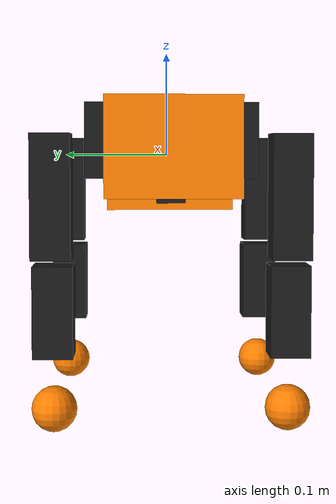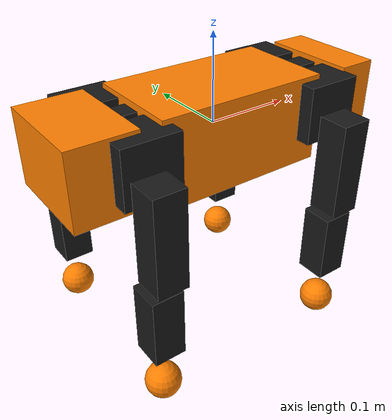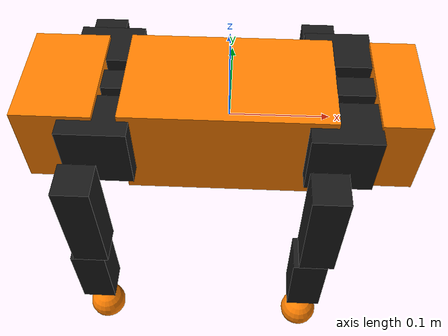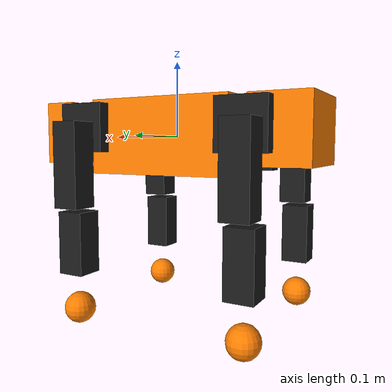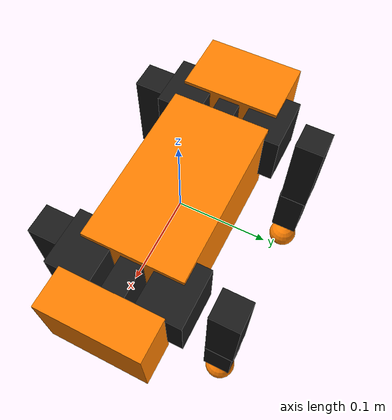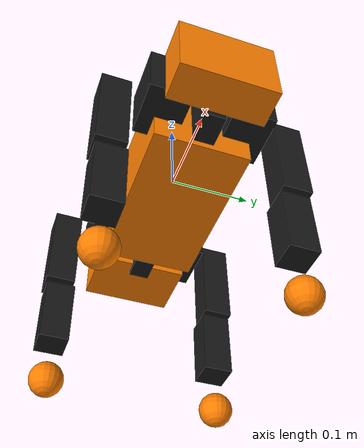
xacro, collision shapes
<?xml version="1.0"?>
<robot name="spot" xmlns:xacro="http://www.ros.org/wiki/xacro">

  <!-- Include Macros -->
  <xacro:include filename="$(find spot_mini_mini_description)/urdf/spot_macro.xacro" />

  <!-- ROS2 control - replaces transmissions -->
  <xacro:include filename="$(find spot_mini_mini_description)/urdf/ros2_control.xacro" />
  <!-- Robot description -->
  <!-- STATIC Links -->
  <link name="base_link"/>

  <!-- MAIN BODY -->
  <xacro:mesh_link name="base_inertia"
              origin_rpy="0 0 ${pi/2}" origin_xyz="-0.16 0.035 -0.045"
              i_rpy="0 0 0" i_xyz="0 0 0"
              mass="0.6"
              c_xyz="0 0 0"
              length="0.114"
              width="0.2"
              height="0.1"
              matname="orange"
              meshfile="package://spot_mini_mini_description/meshes/OpenQuadruped/MAINBODY.stl"
              meshscale="1 1 1" /> <!-- m to mm -->

  <!-- BATTERY -->
  <xacro:mesh_link name="battery"
              origin_rpy="0 0 ${pi/2}" origin_xyz="-0.15 0.035 -0.022"
              i_rpy="0 0 0" i_xyz="0 0 0"
              mass="0.4"
              c_xyz="0 0 0"
              length="0.048"
              width="0.145"
              height="0.026"
              matname="black"
              meshfile="package://spot_mini_mini_description/meshes/OpenQuadruped/Battery.stl"
              meshscale="1 1 1" /> <!-- m to mm -->

  <!-- CHASSIS LEFT -->
  <xacro:mesh_link name="chassis_left"
              origin_rpy="0 ${pi/2} -${pi/2}" origin_xyz="0.016 0.003 0"
              i_rpy="0 0 0" i_xyz="0 0 0"
              mass="0.01"
              c_xyz="0 0 0"
              length="0.06"
              width="0.15"
              height="0.006"
              matname="black"
              meshfile="package://spot_mini_mini_description/meshes/OpenQuadruped/Chassis_Left_Side.stl"
              meshscale="1 1 1" /> <!-- m to mm -->

  <!-- CHASSIS Right -->
  <xacro:mesh_link name="chassis_right"
              origin_rpy="0 ${pi/2} ${pi/2}" origin_xyz="-0.016 -0.003 0"
              i_rpy="0 0 0" i_xyz="0 0 0"
              mass="0.01"
              c_xyz="0 0 0"
              length="0.06"
              width="0.15"
              height="0.006"
              matname="black"
              meshfile="package://spot_mini_mini_description/meshes/OpenQuadruped/Chassis_Right_Side.stl"
              meshscale="1 1 1" /> <!-- m to mm -->

  <!-- FRONT -->
  <xacro:mesh_link name="front"
              origin_rpy="0 0 ${pi/2}" origin_xyz="-0.16 0.035 -0.045"
              i_rpy="0 0 0" i_xyz="0 0 0"
              mass="0.1"
              c_xyz="0.16 0 0.006"
              length="0.114"
              width="0.045"
              height="0.085"
              matname="orange"
              meshfile="package://spot_mini_mini_description/meshes/OpenQuadruped/Front.stl"
              meshscale="1 1 1" /> <!-- m to mm -->

  <!-- BACK -->
  <xacro:mesh_link name="back"
              origin_rpy="0 0 ${pi/2}" origin_xyz="-0.16 0.035 -0.045"
              i_rpy="0 0 0" i_xyz="0 0 0"
              mass="0.1"
              c_xyz="-0.16 0 0.006"
              length="0.114"
              width="0.075"
              height="0.085"
              matname="orange"
              meshfile="package://spot_mini_mini_description/meshes/OpenQuadruped/Back.stl"
              meshscale="1 1 1" /> <!-- m to mm -->

  <!-- FRONT BRACKET -->
  <xacro:mesh_link name="front_bracket"
              origin_rpy="0 0 ${pi/2}" origin_xyz="-0.16 0.035 -0.045"
              i_rpy="0 0 0" i_xyz="0 0 0"
              mass="0.1"
              c_xyz="0.1 0 0"
              length="0.025"
              width="0.075"
              height="0.085"
              matname="black"
              meshfile="package://spot_mini_mini_description/meshes/OpenQuadruped/Front_Bracket.stl"
              meshscale="1 1 1" /> <!-- m to mm -->

  <!-- BACK BRACKET -->
  <xacro:mesh_link name="back_bracket"
              origin_rpy="0 0 ${pi/2}" origin_xyz="-0.16 0.035 -0.045"
              i_rpy="0 0 0" i_xyz="0 0 0"
              mass="0.1"
              c_xyz="-0.1 0 0"
              length="0.025"
              width="0.075"
              height="0.085"
              matname="black"
              meshfile="package://spot_mini_mini_description/meshes/OpenQuadruped/Back_Bracket.stl"
              meshscale="1 1 1" /> <!-- m to mm -->

  <!-- DYNAMIC LINKS (Joints Included) -->
  <!-- FRONT LEFT LEG -->
  <!-- HIP -->
  <xacro:mesh_link name="front_left_hip"
              origin_rpy="0 0 ${pi/2}" origin_xyz="-0.25 -0.0044 -0.067"
              i_rpy="0 0 0" i_xyz="0 0.075 0"
              mass="0.2"
              c_xyz="0.015 0.01 -0.01"
              length="0.05"
              width="0.065"
              height="0.065"
              matname="black"
              meshfile="package://spot_mini_mini_description/meshes/OpenQuadruped/LEFT_HIP.stl"
              meshscale="1 1 1" /> <!-- m to mm -->
  <xacro:rev_joint name="motor_front_left_hip" type="revolute"
                    axis_xyz="1 0 0"
                    origin_rpy="0 0 0" origin_xyz="${0.2515-0.16} ${0.0044+0.035} ${0.067-0.045}"
                    parent="front_bracket" child="front_left_hip"
                    effort="4.0" velocity="4.0"
                    damping="0.0"
                    friction="0.0"
                    lower="-1.04"
                    upper="1.04"/>
  <!-- UPPER LEG -->
  <xacro:mesh_link name="front_left_upper_leg"
              origin_rpy="0 0 ${pi/2}" origin_xyz="${-0.252} ${-0.05} ${-0.055}"
              i_rpy="0 0 0" i_xyz="-0.005 0.0175 -0.055"
              mass="0.13"
              c_xyz="0 0.02 -0.05"
              length="0.035"
              width="0.035"
              height="0.11"
              matname="black"
              meshfile="package://spot_mini_mini_description/meshes/OpenQuadruped/LEFT_UPPER_LEG.stl"
              meshscale="1 1 1" /> <!-- m to mm -->
  <xacro:rev_joint name="motor_front_left_upper_leg" type="revolute"
                    axis_xyz="0 1 0"
                    origin_rpy="0 0 0" origin_xyz="0.0015 0.045 -0.0087"
                    parent="front_left_hip" child="front_left_upper_leg"
                    effort="4.0" velocity="4.0"
                    damping="0.0"
                    friction="0.0"
                    lower="${-pi/2}"
                    upper="2.59"/>
  <!-- LOWER LEG -->
  <xacro:mesh_link name="front_left_lower_leg"
              origin_rpy="0 0 ${pi/2}" origin_xyz="${-0.247} ${-0.068} ${0.0535}"
              i_rpy="0 0 0" i_xyz="-0.01 0 -0.06"
              mass="0.05"
              c_xyz="0 0 -0.04"
              length="0.035"
              width="0.035"
              height="0.08"
              matname="black"
              meshfile="package://spot_mini_mini_description/meshes/OpenQuadruped/LEFT_LOWER_LEG.stl"
              meshscale="1 1 1" /> <!-- m to mm -->
  <xacro:rev_joint name="motor_front_left_lower_leg" type="revolute"
                    axis_xyz="0 1 0"
                    origin_rpy="0 0 0" origin_xyz="-0.005 0.018 -0.109"
                    parent="front_left_upper_leg" child="front_left_lower_leg"
                    effort="4.0" velocity="4.0"
                    damping="0.0"
                    friction="0.0"
                    lower="-2.9"
                    upper="${pi/2}"/>
  <!-- FOOT -->
  <xacro:mesh_link_sphere name="front_left_foot"
              origin_rpy="0 0 ${pi/2}" origin_xyz="${-0.247} ${-0.068} ${0.18}"
              i_rpy="0 0 0" i_xyz="0 0 0"
              mass="0.005"
              c_xyz="${-0.247} ${-0.068} ${0.18}"
              length="0.05"
              width="0.065"
              height="0.065"
              radius="0.02"
              matname="orange"
              meshfile="package://spot_mini_mini_description/meshes/OpenQuadruped/LEFT_FOOT.stl"
              meshscale="1 1 1" /> <!-- m to mm -->
  <xacro:frame_joint name="front_left_leg_foot" type="fixed"
                  origin_rpy="0 0 0" origin_xyz="0 0 -0.1265"
                  parent="front_left_lower_leg" child="front_left_foot"/>

  <!-- BACK LEFT LEG -->
  <!-- HIP -->
  <xacro:mesh_link name="back_left_hip"
              origin_rpy="0 0 ${pi/2}" origin_xyz="-0.25 -0.0044 -0.067"
              i_rpy="0 0 0" i_xyz="0 0.075 0"
              mass="0.2"
              c_xyz="0.015 0.01 -0.01"
              length="0.05"
              width="0.065"
              height="0.065"
              matname="black"
              meshfile="package://spot_mini_mini_description/meshes/OpenQuadruped/LEFT_HIP.stl"
              meshscale="1 1 1" /> <!-- m to mm -->
  <xacro:rev_joint name="motor_back_left_hip" type="revolute"
                    axis_xyz="1 0 0"
                    origin_rpy="0 0 0" origin_xyz="${-0.2515+0.115} ${0.0044+0.035} ${0.067-0.045}"
                    parent="back_bracket" child="back_left_hip"
                    effort="4.0" velocity="4.0"
                    damping="0.0"
                    friction="0.0"
                    lower="-1.04"
                    upper="1.04"/>
  <!-- UPPER LEG -->
  <xacro:mesh_link name="back_left_upper_leg"
              origin_rpy="0 0 ${pi/2}" origin_xyz="${-0.252} ${-0.05} ${-0.055}"
              i_rpy="0 0 0" i_xyz="-0.005 0.0175 -0.055"
              mass="0.13"
              c_xyz="0 0.02 -0.05"
              length="0.035"
              width="0.035"
              height="0.11"
              matname="black"
              meshfile="package://spot_mini_mini_description/meshes/OpenQuadruped/LEFT_UPPER_LEG.stl"
              meshscale="1 1 1" /> <!-- m to mm -->
  <xacro:rev_joint name="motor_back_left_upper_leg" type="revolute"
                    axis_xyz="0 1 0"
                    origin_rpy="0 0 0" origin_xyz="0.0015 0.045 -0.0087"
                    parent="back_left_hip" child="back_left_upper_leg"
                    effort="4.0" velocity="4.0"
                    damping="0.0"
                    friction="0.0"
                    lower="${-pi/2}"
                    upper="2.59"/>
  <!-- LOWER LEG -->
  <xacro:mesh_link name="back_left_lower_leg"
              origin_rpy="0 0 ${pi/2}" origin_xyz="${-0.247} ${-0.068} ${0.0535}"
              i_rpy="0 0 0" i_xyz="-0.01 0 -0.06"
              mass="0.05"
              c_xyz="0 0 -0.04"
              length="0.035"
              width="0.035"
              height="0.08"
              matname="black"
              meshfile="package://spot_mini_mini_description/meshes/OpenQuadruped/LEFT_LOWER_LEG.stl"
              meshscale="1 1 1" /> <!-- m to mm -->
  <xacro:rev_joint name="motor_back_left_lower_leg" type="revolute"
                    axis_xyz="0 1 0"
                    origin_rpy="0 0 0" origin_xyz="-0.005 0.018 -0.109"
                    parent="back_left_upper_leg" child="back_left_lower_leg"
                    effort="4.0" velocity="4.0"
                    damping="0.0"
                    friction="0.0"
                    lower="-2.9"
                    upper="${pi/2}"/>
  <!-- FOOT -->
  <xacro:mesh_link_sphere name="back_left_foot"
              origin_rpy="0 0 ${pi/2}" origin_xyz="${-0.247} ${-0.068} ${0.18}"
              i_rpy="0 0 0" i_xyz="0 0 0"
              mass="0.005"
              c_xyz="${-0.247} ${-0.068} ${0.18}"
              length="0.05"
              width="0.065"
              height="0.065"
              radius="0.02"
              matname="orange"
              meshfile="package://spot_mini_mini_description/meshes/OpenQuadruped/LEFT_FOOT.stl"
              meshscale="1 1 1" /> <!-- m to mm -->
  <xacro:frame_joint name="back_left_leg_foot" type="fixed"
                  origin_rpy="0 0 0" origin_xyz="0 0 -0.1265"
                  parent="back_left_lower_leg" child="back_left_foot"/>

  <!-- FRONT RIGHT LEG -->
  <!-- HIP -->
  <xacro:mesh_link name="front_right_hip"
              origin_rpy="0 0 ${pi/2}" origin_xyz="-0.25 0.074 -0.067"
              i_rpy="0 0 0" i_xyz="0 -0.075 0"
              mass="0.2"
              c_xyz="0.015 ${-0.01} -0.01"
              length="0.05"
              width="0.065"
              height="0.065"
              matname="black"
              meshfile="package://spot_mini_mini_description/meshes/OpenQuadruped/RIGHT_HIP.stl"
              meshscale="1 1 1" /> <!-- m to mm -->
  <xacro:rev_joint name="motor_front_right_hip" type="revolute"
                    axis_xyz="1 0 0"
                    origin_rpy="0 0 0" origin_xyz="${0.2515-0.16} ${-(0.0044+0.035)} ${0.067-0.045}"
                    parent="front_bracket" child="front_right_hip"
                    effort="4.0" velocity="4.0"
                    damping="0.0"
                    friction="0.0"
                    lower="-1.04"
                    upper="1.04"/>
  <!-- UPPER LEG -->
  <xacro:mesh_link name="front_right_upper_leg"
              origin_rpy="0 0 ${pi/2}" origin_xyz="${-0.252} ${0.12} ${-0.055}"
              i_rpy="0 0 0" i_xyz="-0.005 -0.0175 -0.055"
              mass="0.13"
              c_xyz="0 ${-0.02} -0.05"
              length="0.035"
              width="0.035"
              height="0.11"
              matname="black"
              meshfile="package://spot_mini_mini_description/meshes/OpenQuadruped/RIGHT_UPPER_LEG.stl"
              meshscale="1 1 1" /> <!-- m to mm -->
  <xacro:rev_joint name="motor_front_right_upper_leg" type="revolute"
                    axis_xyz="0 1 0"
                    origin_rpy="0 0 0" origin_xyz="0.0015 -0.045 -0.0087"
                    parent="front_right_hip" child="front_right_upper_leg"
                    effort="4.0" velocity="4.0"
                    damping="0.0"
                    friction="0.0"
                    lower="${-pi/2}"
                    upper="2.59"/>
  <!-- LOWER LEG -->
  <xacro:mesh_link name="front_right_lower_leg"
              origin_rpy="0 0 ${pi/2}" origin_xyz="${-0.247} ${0.138} ${0.0535}"
              i_rpy="0 0 0" i_xyz="-0.01 0 -0.06"
              mass="0.05"
              c_xyz="0 0 -0.04"
              length="0.035"
              width="0.035"
              height="0.08"
              matname="black"
              meshfile="package://spot_mini_mini_description/meshes/OpenQuadruped/RIGHT_LOWER_LEG.stl"
              meshscale="1 1 1" /> <!-- m to mm -->
  <xacro:rev_joint name="motor_front_right_lower_leg" type="revolute"
                    axis_xyz="0 1 0"
                    origin_rpy="0 0 0" origin_xyz="-0.005 -0.018 -0.109"
                    parent="front_right_upper_leg" child="front_right_lower_leg"
                    effort="4.0" velocity="4.0"
                    damping="0.0"
                    friction="0.0"
                    lower="-2.9"
                    upper="${pi/2}"/>
  <!-- FOOT -->
  <xacro:mesh_link_sphere name="front_right_foot"
              origin_rpy="0 0 ${pi/2}" origin_xyz="${-0.247} ${0.138} ${0.18}"
              i_rpy="0 0 0" i_xyz="0 0 0"
              mass="0.005"
              c_xyz="${-0.247} ${0.138} ${0.18}"
              length="0.05"
              width="0.065"
              height="0.065"
              radius="0.02"
              matname="orange"
              meshfile="package://spot_mini_mini_description/meshes/OpenQuadruped/RIGHT_FOOT.stl"
              meshscale="1 1 1" /> <!-- m to mm -->
  <xacro:frame_joint name="front_right_leg_foot" type="fixed"
                  origin_rpy="0 0 0" origin_xyz="0 0 -0.1265"
                  parent="front_right_lower_leg" child="front_right_foot"/>

  <!-- BACK RIGHT LEG -->
  <!-- HIP -->
  <xacro:mesh_link name="back_right_hip"
              origin_rpy="0 0 ${pi/2}" origin_xyz="-0.25 0.074 -0.067"
              i_rpy="0 0 0" i_xyz="0 -0.075 0"
              mass="0.2"
              c_xyz="0.015 ${-0.01} -0.01"
              length="0.05"
              width="0.065"
              height="0.065"
              matname="black"
              meshfile="package://spot_mini_mini_description/meshes/OpenQuadruped/RIGHT_HIP.stl"
              meshscale="1 1 1" /> <!-- m to mm -->
  <xacro:rev_joint name="motor_back_right_hip" type="revolute"
                    axis_xyz="1 0 0"
                    origin_rpy="0 0 0" origin_xyz="${-0.2515+0.115} ${-(0.0044+0.035)} ${0.067-0.045}"
                    parent="back_bracket" child="back_right_hip"
                    effort="4.0" velocity="4.0"
                    damping="0.0"
                    friction="0.0"
                    lower="-1.04"
                    upper="1.04"/>
  <!-- UPPER LEG -->
  <xacro:mesh_link name="back_right_upper_leg"
              origin_rpy="0 0 ${pi/2}" origin_xyz="${-0.252} ${0.12} ${-0.055}"
              i_rpy="0 0 0" i_xyz="-0.005 -0.0175 -0.055"
              mass="0.13"
              c_xyz="0 ${-0.02} -0.05"
              length="0.035"
              width="0.035"
              height="0.11"
              matname="black"
              meshfile="package://spot_mini_mini_description/meshes/OpenQuadruped/RIGHT_UPPER_LEG.stl"
              meshscale="1 1 1" /> <!-- m to mm -->
  <xacro:rev_joint name="motor_back_right_upper_leg" type="revolute"
                    axis_xyz="0 1 0"
                    origin_rpy="0 0 0" origin_xyz="0.0015 -0.045 -0.0087"
                    parent="back_right_hip" child="back_right_upper_leg"
                    effort="4.0" velocity="4.0"
                    damping="0.0"
                    friction="0.0"
                    lower="${-pi/2}"
                    upper="2.59"/>
  <!-- LOWER LEG -->
  <xacro:mesh_link name="back_right_lower_leg"
              origin_rpy="0 0 ${pi/2}" origin_xyz="${-0.247} ${0.138} ${0.0535}"
              i_rpy="0 0 0" i_xyz="-0.01 0 -0.06"
              mass="0.05"
              c_xyz="0 0 -0.04"
              length="0.035"
              width="0.035"
              height="0.08"
              matname="black"
              meshfile="package://spot_mini_mini_description/meshes/OpenQuadruped/RIGHT_LOWER_LEG.stl"
              meshscale="1 1 1" /> <!-- m to mm -->
  <xacro:rev_joint name="motor_back_right_lower_leg" type="revolute"
                    axis_xyz="0 1 0"
                    origin_rpy="0 0 0" origin_xyz="-0.005 -0.018 -0.109"
                    parent="back_right_upper_leg" child="back_right_lower_leg"
                    effort="4.0" velocity="4.0"
                    damping="0.0"
                    friction="0.0"
                    lower="-2.9"
                    upper="${pi/2}"/>
  <!-- FOOT -->
  <xacro:mesh_link_sphere name="back_right_foot"
              origin_rpy="0 0 ${pi/2}" origin_xyz="${-0.247} ${0.138} ${0.18}"
              i_rpy="0 0 0" i_xyz="0 0 0"
              mass="0.005"
              c_xyz="${-0.247} ${0.138} ${0.18}"
              length="0.05"
              width="0.065"
              height="0.065"
              radius="0.02"
              matname="orange"
              meshfile="package://spot_mini_mini_description/meshes/OpenQuadruped/RIGHT_FOOT.stl"
              meshscale="1 1 1" /> <!-- m to mm -->
  <xacro:frame_joint name="back_right_leg_foot" type="fixed"
                  origin_rpy="0 0 0" origin_xyz="0 0 -0.1265"
                  parent="back_right_lower_leg" child="back_right_foot"/>

<!-- STATIC Joints -->
<!-- FOOTPRINT TO MAIN BODY-->
<xacro:frame_joint name="base_base" type="fixed"
                  origin_rpy="0 0 0" origin_xyz="0 0 0"
                  parent="base_link" child="base_inertia"/>
<!-- MAIN BODY TO BATTERY -->
<xacro:frame_joint name="base_battery" type="fixed"
                  origin_rpy="0 0 0" origin_xyz="-0.01 0 -0.0225"
                  parent="base_link" child="battery"/>
<!-- MAIN BODY TO CHASSIS LEFT -->
<xacro:frame_joint name="base_left" type="fixed"
                  origin_rpy="0 0 0" origin_xyz="0.00 0.052 0"
                  parent="base_link" child="chassis_left"/>
<!-- MAIN BODY TO CHASSIS RIGHT -->
<xacro:frame_joint name="base_right" type="fixed"
                  origin_rpy="0 0 0" origin_xyz="0.00 -0.052 0"
                  parent="base_link" child="chassis_right"/>
<!-- MAIN BODY TO FRONT -->
<xacro:frame_joint name="base_front" type="fixed"
                  origin_rpy="0 0 0" origin_xyz="0 0 0"
                  parent="base_link" child="front"/>
<!-- MAIN BODY TO BACK -->
<xacro:frame_joint name="base_back" type="fixed"
                  origin_rpy="0 0 0" origin_xyz="0 0 0"
                  parent="base_link" child="back"/>
<!-- MAIN BODY TO FRONT BRACKET -->
<xacro:frame_joint name="base_front_bracket" type="fixed"
                  origin_rpy="0 0 0" origin_xyz="0 0 0"
                  parent="base_link" child="front_bracket"/>
<!-- MAIN BODY TO BACK BRACKET -->
<xacro:frame_joint name="base_back_bracket" type="fixed"
                  origin_rpy="0 0 0" origin_xyz="0 0 0"
                  parent="base_link" child="back_bracket"/>

<!-- this section is of old ros1 gazebo       -->
<xacro:spot_ros2_control/>

  <!--
    Gazebo plugin that loads gz_ros2_control into the simulation
    Replaces: libgazebo_ros_control.so from ROS1
    This is what starts the controller_manager inside Gazebo
  -->
<gazebo>
  <plugin filename="gz_ros2_control-system" name="gz_ros2_control::GazeboSimROS2ControlPlugin">
    <ros>
      <namespace>/spot</namespace>
    </ros>
    <parameters>$(find spot_mini_mini_gazebo)/config/control.yaml</parameters>
  </plugin>
</gazebo>

</robot>

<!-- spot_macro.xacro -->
<robot xmlns:xacro="http://www.ros.org/wiki/xacro">

  <material name="orange">
    <color rgba="1.0 0.5 0.0 1"/>
  </material>
  <material name="black">
    <color rgba="0.1 0.1 0.1 1"/>
  </material>
  <material name="grey">
    <color rgba="0.6 0.6 0.6 1"/>
  </material>

  <xacro:macro name="rev_joint" params="name type axis_xyz origin_rpy origin_xyz parent child effort velocity damping friction upper lower">
    <joint name="${name}" type="${type}">
      <axis xyz="${axis_xyz}" />
      <origin rpy="${origin_rpy}" xyz="${origin_xyz}" />
      <parent link="${parent}" />
      <child link="${child}" />
      <limit effort="${effort}" velocity="${velocity}" lower="${lower}" upper="${upper}"/>
      <dynamics damping="${damping}" friction="${friction}" />
    </joint>
  </xacro:macro>

  <xacro:macro name="frame_joint" params="name type origin_rpy origin_xyz parent child">
    <joint name="${name}" type="${type}">
      <origin rpy="${origin_rpy}" xyz="${origin_xyz}" />
      <parent link="${parent}" />
      <child link="${child}" />
    </joint>
  </xacro:macro>

  <xacro:macro name="mesh_link" params="name origin_xyz origin_rpy meshfile meshscale c_xyz matname mass i_xyz i_rpy length width height">
    <link name="${name}">
      <visual>
        <origin rpy="${origin_rpy}" xyz="${origin_xyz}" />
        <geometry>
          <mesh filename="${meshfile}" scale="${meshscale}"/>
        </geometry>
        <material name="${matname}"/>
      </visual>

      <collision>
        <origin rpy="${origin_rpy}" xyz="${c_xyz}" />
        <geometry>
          <box size="${length} ${width} ${height}" />
        </geometry>
      </collision>

      <inertial>
        <mass value="${mass}" />
        <origin rpy="${i_rpy}" xyz="${i_xyz}" /> <!-- Inertial Axes -->
        <inertia ixx="${mass * (width * width + height * height)/12.0}" ixy="${0}" ixz="${0}" iyx="${0}" iyy="${mass * (length * length + height * height)/12.0}" iyz="${0}" izx="${0}" izy="${0}" izz="${mass * (length * length + width * width)/12.0}" />
      </inertial>
    </link>
    <gazebo reference="${name}">
        <xacro:if value="${matname == 'black'}">
          <material>Gazebo/Black</material>
        </xacro:if>
        <xacro:if value="${matname == 'orange'}">
          <material>Gazebo/Orange</material>
        </xacro:if>
    </gazebo>
  </xacro:macro>

  <xacro:macro name="mesh_link_sphere" params="name origin_xyz origin_rpy meshfile meshscale c_xyz matname mass i_xyz i_rpy length width height radius">
    <link name="${name}">
      <visual>
        <origin rpy="${origin_rpy}" xyz="${origin_xyz}" />
        <geometry>
          <mesh filename="${meshfile}" scale="${meshscale}"/>
        </geometry>
        <material name="${matname}"/>
      </visual>

      <collision>
        <origin rpy="0 0 0" xyz="0 0 0" />
        <geometry>
          <sphere radius="${radius}"/>
        </geometry>
        <contact_coefficients mu="10.1"/>
      </collision>

      <inertial>
        <mass value="${mass}" />
        <origin rpy="${i_rpy}" xyz="${i_xyz}" /> <!-- Inertial Axes -->
        <inertia ixx="${mass * (width * width + height * height)/12.0}" ixy="${0}" ixz="${0}" iyx="${0}" iyy="${mass * (length * length + height * height)/12.0}" iyz="${0}" izx="${0}" izy="${0}" izz="${mass * (length * length + width * width)/12.0}" />
      </inertial>
    </link>

    <gazebo reference="${name}">
      <kp>1000000.0</kp>
      <kd>1.0</kd>
      <mu1>0.8</mu1>
      <mu2>0.8</mu2>
      <maxVel>0.0</maxVel>
      <minDepth>0.001</minDepth>
      <material>Gazebo/Orange</material>
    </gazebo>
  </xacro:macro>

  <!-- Left Leg: prefix is front or rear -->

</robot>
